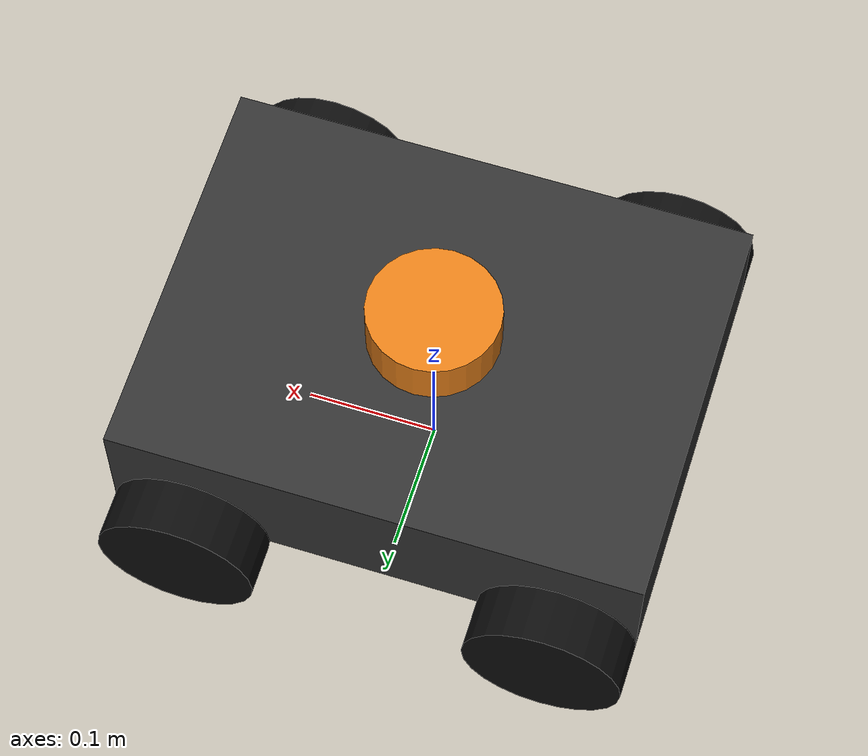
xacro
<?xml version="1.0"?>
<robot name="wander_bot" xmlns:xacro="http://www.ros.org/wiki/xacro">

  <!-- ── Dimensions ── -->
  <xacro:property name="chassis_l" value="0.40"/>
  <xacro:property name="chassis_w" value="0.30"/>
  <xacro:property name="chassis_h" value="0.10"/>

  <xacro:property name="wheel_r"   value="0.06"/>
  <xacro:property name="wheel_w"   value="0.04"/>

  <xacro:property name="lidar_r"   value="0.05"/>
  <xacro:property name="lidar_h"   value="0.04"/>

  <!-- ── Materials ── -->
  <material name="dark_grey"><color rgba="0.2 0.2 0.2 1"/></material>
  <material name="orange">   <color rgba="0.9 0.5 0.1 1"/></material>
  <material name="black">    <color rgba="0.05 0.05 0.05 1"/></material>

  <!-- ════════════════════════════════
       BASE LINK  (physics origin)
       ════════════════════════════════ -->
  <link name="base_link"/>

  <!-- ── Chassis ── -->
  <link name="chassis">
    <visual>
      <geometry><box size="${chassis_l} ${chassis_w} ${chassis_h}"/></geometry>
      <material name="dark_grey"/>
    </visual>
    <collision>
      <geometry><box size="${chassis_l} ${chassis_w} ${chassis_h}"/></geometry>
    </collision>
    <inertial>
      <mass value="5.0"/>
      <inertia ixx="0.043" ixy="0" ixz="0"
               iyy="0.069" iyz="0"
               izz="0.108"/>
    </inertial>
  </link>

  <joint name="base_to_chassis" type="fixed">
    <parent link="base_link"/>
    <child  link="chassis"/>
    <origin xyz="0 0 ${wheel_r + chassis_h/2}"/>
  </joint>

  <!-- ── Wheel macro ── -->
  <xacro:macro name="wheel" params="name x y">
    <link name="${name}_wheel">
      <visual>
        <geometry><cylinder radius="${wheel_r}" length="${wheel_w}"/></geometry>
        <material name="black"/>
      </visual>
      <collision>
        <geometry><cylinder radius="${wheel_r}" length="${wheel_w}"/></geometry>
      </collision>
      <inertial>
        <mass value="0.5"/>
        <inertia ixx="0.00056" ixy="0" ixz="0"
                 iyy="0.00056" iyz="0"
                 izz="0.00090"/>
      </inertial>
    </link>

    <joint name="${name}_wheel_joint" type="continuous">
      <parent link="chassis"/>
      <child  link="${name}_wheel"/>
      <!-- offset down from chassis centre so wheels sit on the ground -->
      <origin xyz="${x} ${y} ${-chassis_h/2}" rpy="${pi/2} 0 0"/>
      <axis xyz="0 0 1"/>
    </joint>
  </xacro:macro>

  <xacro:wheel name="front_left"  x=" ${chassis_l/2 - 0.06}" y=" ${chassis_w/2 + wheel_w/2}"/>
  <xacro:wheel name="front_right" x=" ${chassis_l/2 - 0.06}" y="-${chassis_w/2 + wheel_w/2}"/>
  <xacro:wheel name="rear_left"   x="-${chassis_l/2 - 0.06}" y=" ${chassis_w/2 + wheel_w/2}"/>
  <xacro:wheel name="rear_right"  x="-${chassis_l/2 - 0.06}" y="-${chassis_w/2 + wheel_w/2}"/>

  <!-- ── Lidar link ── -->
  <link name="lidar_link">
    <visual>
      <geometry><cylinder radius="${lidar_r}" length="${lidar_h}"/></geometry>
      <material name="orange"/>
    </visual>
    <collision>
      <geometry><cylinder radius="${lidar_r}" length="${lidar_h}"/></geometry>
    </collision>
    <inertial>
      <mass value="0.1"/>
      <inertia ixx="0.000042" ixy="0" ixz="0"
               iyy="0.000042" iyz="0"
               izz="0.000063"/>
    </inertial>
  </link>

  <joint name="lidar_joint" type="fixed">
    <parent link="chassis"/>
    <child  link="lidar_link"/>
    <origin xyz="0 0 ${chassis_h/2 + lidar_h/2}"/>
  </joint>

  <!-- ════════════════════════════════
       GZ PLUGINS
       ════════════════════════════════ -->

  <!-- Differential drive -->
  <gazebo>
    <plugin filename="gz-sim-diff-drive-system"
            name="gz::sim::systems::DiffDrive">
      <left_joint>front_left_wheel_joint</left_joint>
      <left_joint>rear_left_wheel_joint</left_joint>
      <right_joint>front_right_wheel_joint</right_joint>
      <right_joint>rear_right_wheel_joint</right_joint>
      <wheel_separation>${chassis_w + wheel_w}</wheel_separation>
      <wheel_radius>${wheel_r}</wheel_radius>
      <topic>/cmd_vel</topic>
      <odom_topic>/odom</odom_topic>
      <frame_id>odom</frame_id>
      <child_frame_id>base_link</child_frame_id>
    </plugin>
  </gazebo>

  <!-- Lidar sensor -->
  <gazebo reference="lidar_link">
    <sensor name="lidar" type="gpu_lidar">
      <topic>/scan</topic>
      <update_rate>10</update_rate>
      <lidar>
        <scan>
          <horizontal>
            <samples>360</samples>
            <resolution>1</resolution>
            <min_angle>-3.14159</min_angle>
            <max_angle> 3.14159</max_angle>
          </horizontal>
        </scan>
        <range>
          <min>0.12</min>
          <max>10.0</max>
        </range>
      </lidar>
      <always_on>true</always_on>
      <visualize>true</visualize>
    </sensor>
  </gazebo>

</robot>
